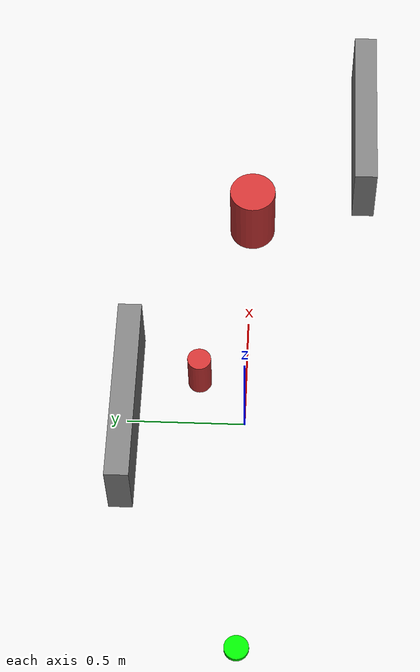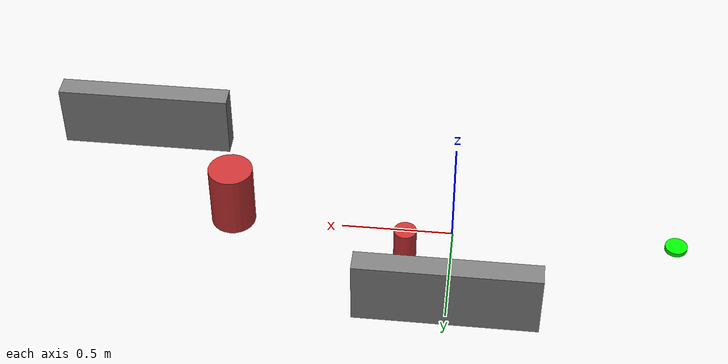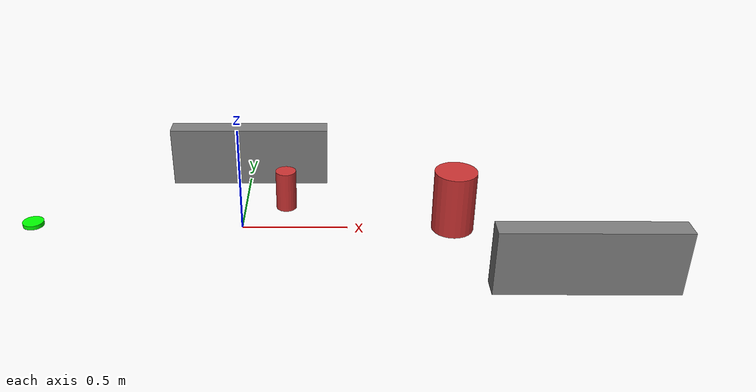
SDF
<sdf version="1.6">
 <world name="dynamic_navigation_world">
  <model name="start_marker">
   <static>true</static>
   <pose>-1 0 0.02 0 0 0</pose>
   <link name="link">
    <visual name="visual">
     <geometry><cylinder><radius>0.05</radius><length>0.02</length></cylinder></geometry>
     <material><diffuse>0 1 0 1</diffuse></material>
    </visual>
   </link>
  </model>
  <model name="goal_marker">
   <static>true</static>
   <pose>1 0 0.02 0 0 0</pose>
   <link name="link">
    <visual name="visual">
     <geometry><cylinder><radius>0.05</radius><length>0.02</length></cylinder></geometry>
     <material><diffuse>1 0 0 1</diffuse></material>
    </visual>
   </link>
  </model>
  <model name="wall_1">
   <static>true</static>
   <pose>0 0.5 0.15 0 0 0</pose>
   <link name="link">
    <collision name="collision"><geometry><box><size>0.8 0.1 0.3</size></box></geometry></collision>
    <visual name="visual">
     <geometry><box><size>0.8 0.1 0.3</size></box></geometry>
     <material><diffuse>0.5 0.5 0.5 1</diffuse></material>
    </visual>
   </link>
  </model>
  <model name="wall_2">
   <static>true</static>
   <pose>1.5 -0.5 0.15 0 0 0</pose>
   <link name="link">
    <collision name="collision"><geometry><box><size>0.8 0.1 0.3</size></box></geometry></collision>
    <visual name="visual">
     <geometry><box><size>0.8 0.1 0.3</size></box></geometry>
     <material><diffuse>0.5 0.5 0.5 1</diffuse></material>
    </visual>
   </link>
  </model>
  <model name="cylinder_1">
   <pose>1 0 0.15 0 0 0</pose>
   <link name="link">
    <collision name="collision">
     <geometry><cylinder><radius>0.1</radius><length>0.3</length></cylinder></geometry>
    </collision>
    <visual name="visual">
     <geometry><cylinder><radius>0.1</radius><length>0.3</length></cylinder></geometry>
     <material><diffuse>0.8 0.2 0.2 1</diffuse></material>
    </visual>
   </link>
  </model>
  <model name="cylinder_2">
   <pose>0.2 0.2 0.1 0 0 0</pose>
   <link name="link">
    <collision name="collision">
     <geometry><cylinder><radius>0.05</radius><length>0.2</length></cylinder></geometry>
    </collision>
    <visual name="visual">
     <geometry><cylinder><radius>0.05</radius><length>0.2</length></cylinder></geometry>
     <material><diffuse>0.8 0.2 0.2 1.0</diffuse></material>
    </visual>
   </link>
  </model>
 </world>
</sdf>
